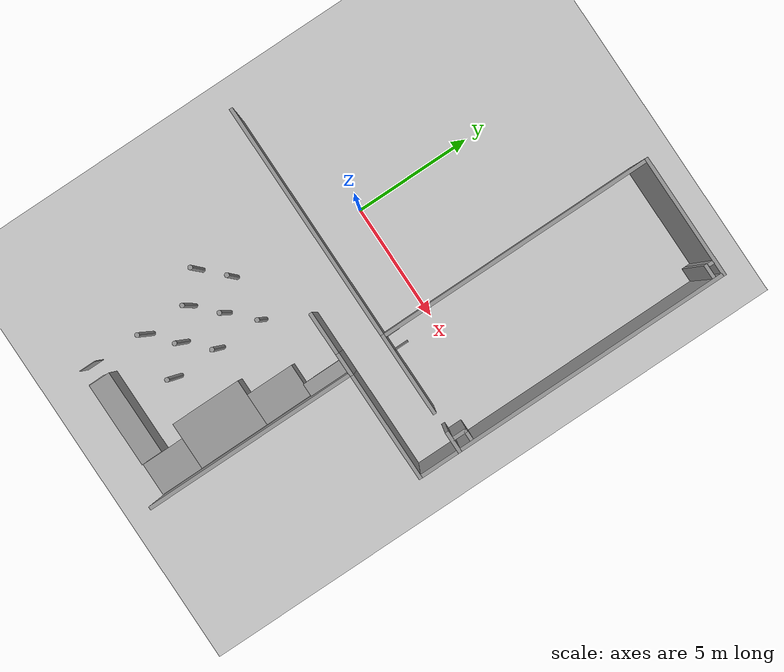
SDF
<sdf version="1.6">
 <world name="default">
  <model name="ground_plane">
   <static>1</static>
   <link name="link">
    <collision name="collision">
     <geometry><plane><normal>0 0 1</normal><size>100 100</size></plane></geometry>
     <surface>
      <contact><collide_bitmask>65535</collide_bitmask></contact>
      <friction><ode><mu>1</mu><mu2>1</mu2></ode></friction>
     </surface>
    </collision>
    <visual name="visual">
     <cast_shadows>0</cast_shadows>
     <geometry><plane><normal>0 0 1</normal><size>100 100</size></plane></geometry>
     <material>
      <script><uri>file://media/materials/scripts/gazebo.material</uri><name>Gazebo/Grey</name></script>
     </material>
    </visual>
   </link>
  </model>
  <model name="frame_503">
   <pose>7.129 3.88164 0 0 -0 0</pose>
   <link name="Wall_10">
    <collision name="Wall_10_Collision">
     <geometry><box><size>11.57 0.15 2.5</size></box></geometry>
     <pose>0 0 1.25 0 -0 0</pose>
    </collision>
    <visual name="Wall_10_Visual">
     <pose>0 0 1.25 0 -0 0</pose>
     <geometry><box><size>11.57 0.15 2.5</size></box></geometry>
     <material>
      <script><uri>file://media/materials/scripts/gazebo.material</uri><name>Gazebo/Grey</name></script>
      <ambient>1 1 1 1</ambient>
     </material>
     <meta><layer>0</layer></meta>
    </visual>
    <pose>2.5249 0.014025 0 0 -0 -1.5708</pose>
   </link>
   <link name="Wall_16">
    <collision name="Wall_16_Collision">
     <geometry><box><size>0.915 0.15 2.5</size></box></geometry>
     <pose>0 0 1.25 0 -0 0</pose>
    </collision>
    <visual name="Wall_16_Visual">
     <pose>0 0 1.25 0 -0 0</pose>
     <geometry><box><size>0.915 0.15 2.5</size></box></geometry>
     <material>
      <script><uri>file://media/materials/scripts/gazebo.material</uri><name>Gazebo/Grey</name></script>
      <ambient>1 1 1 1</ambient>
     </material>
     <meta><layer>0</layer></meta>
    </visual>
    <pose>2.1424 -5.84133 0 0 -0 0</pose>
   </link>
   <link name="Wall_18">
    <collision name="Wall_18_Collision">
     <geometry><box><size>0.61 0.15 2.5</size></box></geometry>
     <pose>0 0 1.25 0 -0 0</pose>
    </collision>
    <visual name="Wall_18_Visual">
     <pose>0 0 1.25 0 -0 0</pose>
     <geometry><box><size>0.61 0.15 2.5</size></box></geometry>
     <material>
      <script><uri>file://media/materials/scripts/gazebo.material</uri><name>Gazebo/Grey</name></script>
      <ambient>1 1 1 1</ambient>
     </material>
     <meta><layer>0</layer></meta>
    </visual>
    <pose>2.02787 -5.48355 0 0 -0 -1.5708</pose>
   </link>
   <link name="Wall_20">
    <collision name="Wall_20_Collision">
     <geometry><box><size>0.515 0.15 2.5</size></box></geometry>
     <pose>0 0 1.25 0 -0 0</pose>
    </collision>
    <visual name="Wall_20_Visual">
     <pose>0 0 1.25 0 -0 0</pose>
     <geometry><box><size>0.515 0.15 2.5</size></box></geometry>
     <material>
      <script><uri>file://media/materials/scripts/gazebo.material</uri><name>Gazebo/Grey</name></script>
      <ambient>1 1 1 1</ambient>
     </material>
     <meta><layer>0</layer></meta>
    </visual>
    <pose>2.21248 -5.24119 0 0 -0 0</pose>
   </link>
   <link name="Wall_22">
    <collision name="Wall_22_Collision">
     <geometry><box><size>3.5 0.15 2.5</size></box></geometry>
     <pose>0 0 1.25 0 -0 0</pose>
    </collision>
    <visual name="Wall_22_Visual">
     <pose>0 0 1.25 0 -0 0</pose>
     <geometry><box><size>3.5 0.15 2.5</size></box></geometry>
     <material>
      <script><uri>file://media/materials/scripts/gazebo.material</uri><name>Gazebo/Grey</name></script>
      <ambient>1 1 1 1</ambient>
     </material>
     <meta><layer>0</layer></meta>
    </visual>
    <pose>-0.849025 -5.83136 0 0 -0 0</pose>
   </link>
   <link name="Wall_27">
    <collision name="Wall_27_Collision">
     <geometry><box><size>0.23 0.15 2.5</size></box></geometry>
     <pose>0 0 1.25 0 -0 0</pose>
    </collision>
    <visual name="Wall_27_Visual">
     <pose>0 0 1.25 0 -0 0</pose>
     <geometry><box><size>0.23 0.15 2.5</size></box></geometry>
     <material>
      <script><uri>file://media/materials/scripts/gazebo.material</uri><name>Gazebo/Grey</name></script>
      <ambient>1 1 1 1</ambient>
     </material>
     <meta><layer>0</layer></meta>
    </visual>
    <pose>1.94245 5.66179 0 0 -0 -1.5708</pose>
   </link>
   <link name="Wall_29">
    <collision name="Wall_29_Collision">
     <geometry><box><size>0.59 0.15 2.5</size></box></geometry>
     <pose>0 0 1.25 0 -0 0</pose>
    </collision>
    <visual name="Wall_29_Visual">
     <pose>0 0 1.25 0 -0 0</pose>
     <geometry><box><size>0.59 0.15 2.5</size></box></geometry>
     <material>
      <script><uri>file://media/materials/scripts/gazebo.material</uri><name>Gazebo/Grey</name></script>
      <ambient>1 1 1 1</ambient>
     </material>
     <meta><layer>0</layer></meta>
    </visual>
    <pose>2.16053 5.47077 0 0 -0 0</pose>
   </link>
   <link name="Wall_33">
    <collision name="Wall_33_Collision">
     <geometry><box><size>0.57 0.04 1.3</size></box></geometry>
     <pose>0 0 0.65 0 -0 0</pose>
    </collision>
    <visual name="Wall_33_Visual">
     <pose>0 0 0.65 0 -0 0</pose>
     <geometry><box><size>0.57 0.04 1.3</size></box></geometry>
     <material>
      <script><uri>file://media/materials/scripts/gazebo.material</uri><name>Gazebo/Grey</name></script>
      <ambient>1 1 1 1</ambient>
     </material>
     <meta><layer>0</layer></meta>
    </visual>
    <pose>-2.42208 -5.46511 0 0 -0 -1.5708</pose>
   </link>
   <link name="Wall_35">
    <collision name="Wall_35_Collision">
     <geometry><box><size>0.57 0.04 1.3</size></box></geometry>
     <pose>0 0 0.65 0 -0 0</pose>
    </collision>
    <visual name="Wall_35_Visual">
     <pose>0 0 0.65 0 -0 0</pose>
     <geometry><box><size>0.57 0.04 1.3</size></box></geometry>
     <material>
      <script><uri>file://media/materials/scripts/gazebo.material</uri><name>Gazebo/Grey</name></script>
      <ambient>1 1 1 1</ambient>
     </material>
     <meta><layer>0</layer></meta>
    </visual>
    <pose>-1.81841 -5.4653 0 0 -0 -1.5708</pose>
   </link>
   <link name="Wall_6">
    <collision name="Wall_6_Collision">
     <geometry><box><size>5.2 0.15 2.5</size></box></geometry>
     <pose>0 0 1.25 0 -0 0</pose>
    </collision>
    <visual name="Wall_6_Visual">
     <pose>0 0 1.25 0 -0 0</pose>
     <geometry><box><size>5.2 0.15 2.5</size></box></geometry>
     <material>
      <script><uri>file://media/materials/scripts/gazebo.material</uri><name>Gazebo/Grey</name></script>
      <ambient>1 1 1 1</ambient>
     </material>
     <meta><layer>0</layer></meta>
    </visual>
    <pose>0 5.84133 0 0 -0 0</pose>
   </link>
   <link name="Wall_8">
    <collision name="Wall_8_Collision">
     <geometry><box><size>11.57 0.15 2.5</size></box></geometry>
     <pose>0 0 1.25 0 -0 0</pose>
    </collision>
    <visual name="Wall_8_Visual">
     <pose>0 0 1.25 0 -0 0</pose>
     <geometry><box><size>11.57 0.15 2.5</size></box></geometry>
     <material>
      <script><uri>file://media/materials/scripts/gazebo.material</uri><name>Gazebo/Grey</name></script>
      <ambient>1 1 1 1</ambient>
     </material>
     <meta><layer>0</layer></meta>
    </visual>
    <pose>-2.52426 0.021404 0 0 -0 -1.5708</pose>
   </link>
   <static>1</static>
  </model>
  <model name="aisle1">
   <pose>9.65276 -2.82844 0 0 -0 0</pose>
   <link name="Wall_2">
    <collision name="Wall_2_Collision">
     <geometry><box><size>1.6 0.15 2.5</size></box></geometry>
     <pose>0 0 1.25 0 -0 0</pose>
    </collision>
    <visual name="Wall_2_Visual">
     <pose>0 0 1.25 0 -0 0</pose>
     <geometry><box><size>1.6 0.15 2.5</size></box></geometry>
     <material>
      <script><uri>file://media/materials/scripts/gazebo.material</uri><name>Gazebo/Grey</name></script>
      <ambient>1 1 1 1</ambient>
     </material>
     <meta><layer>0</layer></meta>
    </visual>
    <pose>0 -0 0 0 -0 -1.5708</pose>
   </link>
   <static>1</static>
  </model>
  <model name="a2">
   <pose>7.44595 -3.70134 0 0 -0 0</pose>
   <link name="Wall_7">
    <collision name="Wall_7_Collision">
     <geometry><box><size>4.56 0.15 2.5</size></box></geometry>
     <pose>0 0 1.25 0 -0 0</pose>
    </collision>
    <visual name="Wall_7_Visual">
     <pose>0 0 1.25 0 -0 0</pose>
     <geometry><box><size>4.56 0.15 2.5</size></box></geometry>
     <material>
      <script><uri>file://media/materials/scripts/gazebo.material</uri><name>Gazebo/Grey</name></script>
      <ambient>1 1 1 1</ambient>
     </material>
     <meta><layer>0</layer></meta>
    </visual>
   </link>
   <static>1</static>
  </model>
  <model name="a3">
   <pose>5.08575 -8.18004 0 0 -0 0</pose>
   <link name="Wall_10">
    <collision name="Wall_10_Collision">
     <geometry><box><size>8.82 0.15 2.5</size></box></geometry>
     <pose>0 0 1.25 0 -0 0</pose>
    </collision>
    <visual name="Wall_10_Visual">
     <pose>0 0 1.25 0 -0 0</pose>
     <geometry><box><size>8.82 0.15 2.5</size></box></geometry>
     <material>
      <script><uri>file://media/materials/scripts/gazebo.material</uri><name>Gazebo/Grey</name></script>
      <ambient>1 1 1 1</ambient>
     </material>
     <meta><layer>0</layer></meta>
    </visual>
    <pose>0 -0 0 0 -0 -1.5708</pose>
   </link>
   <static>1</static>
  </model>
  <model name="a5">
   <pose>4.68026 -3.70193 0 0 -0 0</pose>
   <link name="Wall_16">
    <collision name="Wall_16_Collision">
     <geometry><box><size>0.97 0.15 2.5</size></box></geometry>
     <pose>0 0 1.25 0 -0 0</pose>
    </collision>
    <visual name="Wall_16_Visual">
     <pose>0 0 1.25 0 -0 0</pose>
     <geometry><box><size>0.97 0.15 2.5</size></box></geometry>
     <material>
      <script><uri>file://media/materials/scripts/gazebo.material</uri><name>Gazebo/Grey</name></script>
      <ambient>1 1 1 1</ambient>
     </material>
     <meta><layer>0</layer></meta>
    </visual>
   </link>
   <static>1</static>
  </model>
  <model name="a7_0">
   <pose>-0.468482 -1.9505 0 0 -0 0</pose>
   <link name="Wall_44">
    <collision name="Wall_44_Collision">
     <geometry><box><size>10 0.15 2.5</size></box></geometry>
     <pose>0 0 1.25 0 -0 0</pose>
    </collision>
    <visual name="Wall_44_Visual">
     <pose>0 0 1.25 0 -0 0</pose>
     <geometry><box><size>10 0.15 2.5</size></box></geometry>
     <material>
      <script><uri>file://media/materials/scripts/gazebo.material</uri><name>Gazebo/Grey</name></script>
      <ambient>1 1 1 1</ambient>
     </material>
     <meta><layer>0</layer></meta>
    </visual>
   </link>
   <static>1</static>
  </model>
  <model name="step1">
   <static>1</static>
   <link name="link">
    <inertial>
     <mass>10</mass>
     <inertia>
      <ixx>0.166667</ixx>
      <ixy>0</ixy>
      <ixz>0</ixz>
      <iyy>0.166667</iyy>
      <iyz>0</iyz>
      <izz>0.166667</izz>
     </inertia>
    </inertial>
    <visual name="visual">
     <geometry><box><size>1.38 1.80435 1</size></box></geometry>
     <material>
      <script><name>Gazebo/Grey</name><uri>file://media/materials/scripts/gazebo.material</uri></script>
      <shader type="vertex"><normal_map>__default__</normal_map></shader>
      <ambient>0.3 0.3 0.3 1</ambient>
      <diffuse>0.7 0.7 0.7 1</diffuse>
      <specular>0.01 0.01 0.01 1</specular>
      <emissive>0 0 0 1</emissive>
     </material>
    </visual>
    <collision name="collision">
     <geometry><box><size>1.38 1.80435 1</size></box></geometry>
     <surface>
      <friction>
       <ode><mu>1</mu><mu2>1</mu2><fdir1>0 0 0</fdir1><slip1>0</slip1><slip2>0</slip2></ode>
       <torsional>
        <coefficient>1</coefficient>
        <patch_radius>0</patch_radius>
        <surface_radius>0</surface_radius>
        <use_patch_radius>1</use_patch_radius>
        <ode><slip>0</slip></ode>
       </torsional>
      </friction>
      <bounce><restitution_coefficient>0</restitution_coefficient><threshold>1e+06</threshold></bounce>
      <contact>
       <collide_without_contact>0</collide_without_contact>
       <collide_without_contact_bitmask>1</collide_without_contact_bitmask>
       <collide_bitmask>1</collide_bitmask>
       <ode>
        <soft_cfm>0</soft_cfm>
        <soft_erp>0.2</soft_erp>
        <kp>1e+13</kp>
        <kd>1</kd>
        <max_vel>0.01</max_vel>
        <min_depth>0</min_depth>
       </ode>
       <bullet>
        <split_impulse>1</split_impulse>
        <split_impulse_penetration_threshold>-0.01</split_impulse_penetration_threshold>
        <soft_cfm>0</soft_cfm>
        <soft_erp>0.2</soft_erp>
        <kp>1e+13</kp>
        <kd>1</kd>
       </bullet>
      </contact>
     </surface>
    </collision>
   </link>
   <pose>4.28124 -11.4927 0.499995 1e-05 -0 0</pose>
  </model>
  <model name="step3">
   <static>1</static>
   <link name="link">
    <inertial>
     <mass>10</mass>
     <inertia>
      <ixx>0.166667</ixx>
      <ixy>0</ixy>
      <ixz>0</ixz>
      <iyy>0.166667</iyy>
      <iyz>0</iyz>
      <izz>0.166667</izz>
     </inertia>
    </inertial>
    <visual name="visual">
     <geometry><box><size>2.03 3.01 1</size></box></geometry>
     <material>
      <script><name>Gazebo/Grey</name><uri>file://media/materials/scripts/gazebo.material</uri></script>
      <shader type="vertex"><normal_map>__default__</normal_map></shader>
      <ambient>0.3 0.3 0.3 1</ambient>
      <diffuse>0.7 0.7 0.7 1</diffuse>
      <specular>0.01 0.01 0.01 1</specular>
      <emissive>0 0 0 1</emissive>
     </material>
    </visual>
    <collision name="collision">
     <geometry><box><size>2.03 3.01 1</size></box></geometry>
     <surface>
      <friction>
       <ode><mu>1</mu><mu2>1</mu2><fdir1>0 0 0</fdir1><slip1>0</slip1><slip2>0</slip2></ode>
       <torsional>
        <coefficient>1</coefficient>
        <patch_radius>0</patch_radius>
        <surface_radius>0</surface_radius>
        <use_patch_radius>1</use_patch_radius>
        <ode><slip>0</slip></ode>
       </torsional>
      </friction>
      <bounce><restitution_coefficient>0</restitution_coefficient><threshold>1e+06</threshold></bounce>
      <contact>
       <collide_without_contact>0</collide_without_contact>
       <collide_without_contact_bitmask>1</collide_without_contact_bitmask>
       <collide_bitmask>1</collide_bitmask>
       <ode>
        <soft_cfm>0</soft_cfm>
        <soft_erp>0.2</soft_erp>
        <kp>1e+13</kp>
        <kd>1</kd>
        <max_vel>0.01</max_vel>
        <min_depth>0</min_depth>
       </ode>
       <bullet>
        <split_impulse>1</split_impulse>
        <split_impulse_penetration_threshold>-0.01</split_impulse_penetration_threshold>
        <soft_cfm>0</soft_cfm>
        <soft_erp>0.2</soft_erp>
        <kp>1e+13</kp>
        <kd>1</kd>
       </bullet>
      </contact>
     </surface>
    </collision>
   </link>
   <pose>3.95023 -9.08446 0.499995 1e-05 -0 0</pose>
  </model>
  <model name="funi3">
   <static>1</static>
   <link name="link">
    <inertial>
     <mass>10</mass>
     <inertia>
      <ixx>0.166667</ixx>
      <ixy>0</ixy>
      <ixz>0</ixz>
      <iyy>0.166667</iyy>
      <iyz>0</iyz>
      <izz>0.166667</izz>
     </inertia>
    </inertial>
    <pose>-1.31903 0.055597 0 0 -0 0</pose>
    <visual name="visual">
     <geometry><box><size>3.65 0.910525 1</size></box></geometry>
     <material>
      <script><name>Gazebo/Grey</name><uri>file://media/materials/scripts/gazebo.material</uri></script>
      <shader type="vertex"><normal_map>__default__</normal_map></shader>
      <ambient>0.3 0.3 0.3 1</ambient>
      <diffuse>0.7 0.7 0.7 1</diffuse>
      <specular>0.01 0.01 0.01 1</specular>
      <emissive>0 0 0 1</emissive>
     </material>
    </visual>
    <collision name="collision">
     <geometry><box><size>3.65 0.910525 1</size></box></geometry>
     <surface>
      <friction>
       <ode><mu>1</mu><mu2>1</mu2><fdir1>0 0 0</fdir1><slip1>0</slip1><slip2>0</slip2></ode>
       <torsional>
        <coefficient>1</coefficient>
        <patch_radius>0</patch_radius>
        <surface_radius>0</surface_radius>
        <use_patch_radius>1</use_patch_radius>
        <ode><slip>0</slip></ode>
       </torsional>
      </friction>
      <bounce><restitution_coefficient>0</restitution_coefficient><threshold>1e+06</threshold></bounce>
      <contact>
       <collide_without_contact>0</collide_without_contact>
       <collide_without_contact_bitmask>1</collide_without_contact_bitmask>
       <collide_bitmask>1</collide_bitmask>
       <ode>
        <soft_cfm>0</soft_cfm>
        <soft_erp>0.2</soft_erp>
        <kp>1e+13</kp>
        <kd>1</kd>
        <max_vel>0.01</max_vel>
        <min_depth>0</min_depth>
       </ode>
       <bullet>
        <split_impulse>1</split_impulse>
        <split_impulse_penetration_threshold>-0.01</split_impulse_penetration_threshold>
        <soft_cfm>0</soft_cfm>
        <soft_erp>0.2</soft_erp>
        <kp>1e+13</kp>
        <kd>1</kd>
       </bullet>
      </contact>
     </surface>
    </collision>
   </link>
   <pose>3.07038 -12.0343 0.499982 -0 1e-05 -8.9e-05</pose>
  </model>
  <model name="step2">
   <static>1</static>
   <link name="link">
    <inertial>
     <mass>10</mass>
     <inertia>
      <ixx>0.166667</ixx>
      <ixy>0</ixy>
      <ixz>0</ixz>
      <iyy>0.166667</iyy>
      <iyz>0</iyz>
      <izz>0.166667</izz>
     </inertia>
    </inertial>
    <visual name="visual">
     <geometry><box><size>1.38 2.05001 1</size></box></geometry>
     <material>
      <script><name>Gazebo/Grey</name><uri>file://media/materials/scripts/gazebo.material</uri></script>
      <shader type="vertex"><normal_map>__default__</normal_map></shader>
      <ambient>0.3 0.3 0.3 1</ambient>
      <diffuse>0.7 0.7 0.7 1</diffuse>
      <specular>0.01 0.01 0.01 1</specular>
      <emissive>0 0 0 1</emissive>
     </material>
    </visual>
    <collision name="collision">
     <geometry><box><size>1.38 2.05001 1</size></box></geometry>
     <surface>
      <friction>
       <ode><mu>1</mu><mu2>1</mu2><fdir1>0 0 0</fdir1><slip1>0</slip1><slip2>0</slip2></ode>
       <torsional>
        <coefficient>1</coefficient>
        <patch_radius>0</patch_radius>
        <surface_radius>0</surface_radius>
        <use_patch_radius>1</use_patch_radius>
        <ode><slip>0</slip></ode>
       </torsional>
      </friction>
      <bounce><restitution_coefficient>0</restitution_coefficient><threshold>1e+06</threshold></bounce>
      <contact>
       <collide_without_contact>0</collide_without_contact>
       <collide_without_contact_bitmask>1</collide_without_contact_bitmask>
       <collide_bitmask>1</collide_bitmask>
       <ode>
        <soft_cfm>0</soft_cfm>
        <soft_erp>0.2</soft_erp>
        <kp>1e+13</kp>
        <kd>1</kd>
        <max_vel>0.01</max_vel>
        <min_depth>0</min_depth>
       </ode>
       <bullet>
        <split_impulse>1</split_impulse>
        <split_impulse_penetration_threshold>-0.01</split_impulse_penetration_threshold>
        <soft_cfm>0</soft_cfm>
        <soft_erp>0.2</soft_erp>
        <kp>1e+13</kp>
        <kd>1</kd>
       </bullet>
      </contact>
     </surface>
    </collision>
   </link>
   <pose>4.27379 -6.55381 0.499995 -1e-05 0 0</pose>
  </model>
  <model name="deskframe">
   <static>1</static>
   <link name="Wall_34">
    <pose>-0.325 0 0 0 0 -1.5708</pose>
    <inertial>
     <mass>10</mass>
     <inertia><ixx>1</ixx><ixy>0</ixy><ixz>0</ixz><iyy>1</iyy><iyz>0</iyz><izz>1</izz></inertia>
    </inertial>
    <visual name="Wall_34_Visual">
     <pose>0 0 1.25 0 -0 0</pose>
     <geometry><box><size>0.7 0.03 1</size></box></geometry>
     <material>
      <script><uri>file://media/materials/scripts/gazebo.material</uri><name>Gazebo/Grey</name></script>
      <ambient>1 1 1 1</ambient>
      <shader type="vertex"><normal_map>__default__</normal_map></shader>
      <diffuse>0.7 0.7 0.7 1</diffuse>
      <specular>0.01 0.01 0.01 1</specular>
      <emissive>0 0 0 1</emissive>
     </material>
     <meta><layer>0</layer></meta>
    </visual>
    <collision name="Wall_34_Collision">
     <pose>0 0 1.25 0 -0 0</pose>
     <geometry><box><size>0.7 0.15 2.5</size></box></geometry>
     <surface>
      <friction>
       <ode><mu>1</mu><mu2>1</mu2><fdir1>0 0 0</fdir1><slip1>0</slip1><slip2>0</slip2></ode>
       <torsional>
        <coefficient>1</coefficient>
        <patch_radius>0</patch_radius>
        <surface_radius>0</surface_radius>
        <use_patch_radius>1</use_patch_radius>
        <ode><slip>0</slip></ode>
       </torsional>
      </friction>
      <bounce><restitution_coefficient>0</restitution_coefficient><threshold>1e+06</threshold></bounce>
      <contact>
       <collide_without_contact>0</collide_without_contact>
       <collide_without_contact_bitmask>1</collide_without_contact_bitmask>
       <collide_bitmask>1</collide_bitmask>
       <ode>
        <soft_cfm>0</soft_cfm>
        <soft_erp>0.2</soft_erp>
        <kp>1e+13</kp>
        <kd>1</kd>
        <max_vel>0.01</max_vel>
        <min_depth>0</min_depth>
       </ode>
       <bullet>
        <split_impulse>1</split_impulse>
        <split_impulse_penetration_threshold>-0.01</split_impulse_penetration_threshold>
        <soft_cfm>0</soft_cfm>
        <soft_erp>0.2</soft_erp>
        <kp>1e+13</kp>
        <kd>1</kd>
       </bullet>
      </contact>
     </surface>
    </collision>
   </link>
   <link name="Wall_38">
    <pose>0.325 0 0 0 0 -1.5708</pose>
    <inertial>
     <mass>0.400397</mass>
     <inertia>
      <ixx>0.20866</ixx>
      <ixy>0</ixy>
      <ixz>0</ixz>
      <iyy>0.22489</iyy>
      <iyz>0</iyz>
      <izz>0.0164699</izz>
     </inertia>
    </inertial>
    <visual name="Wall_38_Visual">
     <pose>0 0 1.25 0 -0 0</pose>
     <geometry><box><size>0.7 0.030001 1</size></box></geometry>
     <material>
      <script><uri>file://media/materials/scripts/gazebo.material</uri><name>Gazebo/Grey</name></script>
      <ambient>1 1 1 1</ambient>
      <shader type="vertex"><normal_map>__default__</normal_map></shader>
      <diffuse>0.7 0.7 0.7 1</diffuse>
      <specular>0.01 0.01 0.01 1</specular>
      <emissive>0 0 0 1</emissive>
     </material>
     <meta><layer>0</layer></meta>
    </visual>
    <collision name="Wall_38_Collision">
     <pose>0 0 1.25 0 -0 0</pose>
     <geometry><box><size>0.7 0.060061 2.5</size></box></geometry>
     <surface>
      <friction>
       <ode><mu>1</mu><mu2>1</mu2><fdir1>0 0 0</fdir1><slip1>0</slip1><slip2>0</slip2></ode>
       <torsional>
        <coefficient>1</coefficient>
        <patch_radius>0</patch_radius>
        <surface_radius>0</surface_radius>
        <use_patch_radius>1</use_patch_radius>
        <ode><slip>0</slip></ode>
       </torsional>
      </friction>
      <bounce><restitution_coefficient>0</restitution_coefficient><threshold>1e+06</threshold></bounce>
      <contact>
       <collide_without_contact>0</collide_without_contact>
       <collide_without_contact_bitmask>1</collide_without_contact_bitmask>
       <collide_bitmask>1</collide_bitmask>
       <ode>
        <soft_cfm>0</soft_cfm>
        <soft_erp>0.2</soft_erp>
        <kp>1e+13</kp>
        <kd>1</kd>
        <max_vel>0.01</max_vel>
        <min_depth>0</min_depth>
       </ode>
       <bullet>
        <split_impulse>1</split_impulse>
        <split_impulse_penetration_threshold>-0.01</split_impulse_penetration_threshold>
        <soft_cfm>0</soft_cfm>
        <soft_erp>0.2</soft_erp>
        <kp>1e+13</kp>
        <kd>1</kd>
       </bullet>
      </contact>
     </surface>
    </collision>
   </link>
   <pose>-0.415536 -12.0779 -0.765953 0 -0 0</pose>
  </model>
  <model name="frontdesk">
   <static>1</static>
   <link name="link">
    <inertial>
     <mass>1</mass>
     <inertia>
      <ixx>0.166667</ixx>
      <ixy>0</ixy>
      <ixz>0</ixz>
      <iyy>0.166667</iyy>
      <iyz>0</iyz>
      <izz>0.166667</izz>
     </inertia>
    </inertial>
    <visual name="visual">
     <geometry><box><size>0.55 1.74 1</size></box></geometry>
     <material>
      <script><name>Gazebo/Grey</name><uri>file://media/materials/scripts/gazebo.material</uri></script>
      <shader type="vertex"><normal_map>__default__</normal_map></shader>
      <ambient>0.3 0.3 0.3 1</ambient>
      <diffuse>0.7 0.7 0.7 1</diffuse>
      <specular>0.01 0.01 0.01 1</specular>
      <emissive>0 0 0 1</emissive>
     </material>
    </visual>
    <collision name="collision">
     <geometry><box><size>0.55 1.74 1</size></box></geometry>
     <surface>
      <friction>
       <ode><mu>1</mu><mu2>1</mu2><fdir1>0 0 0</fdir1><slip1>0</slip1><slip2>0</slip2></ode>
       <torsional>
        <coefficient>1</coefficient>
        <patch_radius>0</patch_radius>
        <surface_radius>0</surface_radius>
        <use_patch_radius>1</use_patch_radius>
        <ode><slip>0</slip></ode>
       </torsional>
      </friction>
      <bounce><restitution_coefficient>0</restitution_coefficient><threshold>1e+06</threshold></bounce>
      <contact>
       <collide_without_contact>0</collide_without_contact>
       <collide_without_contact_bitmask>1</collide_without_contact_bitmask>
       <collide_bitmask>1</collide_bitmask>
       <ode>
        <soft_cfm>0</soft_cfm>
        <soft_erp>0.2</soft_erp>
        <kp>1e+13</kp>
        <kd>1</kd>
        <max_vel>0.01</max_vel>
        <min_depth>0</min_depth>
       </ode>
       <bullet>
        <split_impulse>1</split_impulse>
        <split_impulse_penetration_threshold>-0.01</split_impulse_penetration_threshold>
        <soft_cfm>0</soft_cfm>
        <soft_erp>0.2</soft_erp>
        <kp>1e+13</kp>
        <kd>1</kd>
       </bullet>
      </contact>
     </surface>
    </collision>
   </link>
   <pose>4.72538 -4.70294 0.5 0 -0 0</pose>
  </model>
  <model name="door">
   <link name="Wall_0">
    <pose>-0.099762 0 0 0 -0 0</pose>
    <inertial>
     <mass>1</mass>
     <inertia><ixx>1</ixx><ixy>0</ixy><ixz>0</ixz><iyy>1</iyy><iyz>0</iyz><izz>1</izz></inertia>
    </inertial>
    <visual name="Wall_0_Visual">
     <pose>0 0 1.25 0 -0 0</pose>
     <geometry><box><size>1.8 0.15 2.5</size></box></geometry>
     <material>
      <script><uri>file://media/materials/scripts/gazebo.material</uri><name>Gazebo/Grey</name></script>
      <ambient>1 1 1 1</ambient>
      <shader type="vertex"><normal_map>__default__</normal_map></shader>
      <diffuse>0.7 0.7 0.7 1</diffuse>
      <specular>0.01 0.01 0.01 1</specular>
      <emissive>0 0 0 1</emissive>
     </material>
     <meta><layer>0</layer></meta>
    </visual>
    <collision name="Wall_0_Collision">
     <pose>0 0 1.25 0 -0 0</pose>
     <geometry><box><size>1.6 0.15 2.5</size></box></geometry>
     <surface>
      <friction>
       <ode><mu>1</mu><mu2>1</mu2><fdir1>0 0 0</fdir1><slip1>0</slip1><slip2>0</slip2></ode>
       <torsional>
        <coefficient>1</coefficient>
        <patch_radius>0</patch_radius>
        <surface_radius>0</surface_radius>
        <use_patch_radius>1</use_patch_radius>
        <ode><slip>0</slip></ode>
       </torsional>
      </friction>
      <bounce><restitution_coefficient>0</restitution_coefficient><threshold>1e+06</threshold></bounce>
      <contact>
       <collide_without_contact>0</collide_without_contact>
       <collide_without_contact_bitmask>1</collide_without_contact_bitmask>
       <collide_bitmask>1</collide_bitmask>
       <ode>
        <soft_cfm>0</soft_cfm>
        <soft_erp>0.2</soft_erp>
        <kp>1e+13</kp>
        <kd>1</kd>
        <max_vel>0.01</max_vel>
        <min_depth>0</min_depth>
       </ode>
       <bullet>
        <split_impulse>1</split_impulse>
        <split_impulse_penetration_threshold>-0.01</split_impulse_penetration_threshold>
        <soft_cfm>0</soft_cfm>
        <soft_erp>0.2</soft_erp>
        <kp>1e+13</kp>
        <kd>1</kd>
       </bullet>
      </contact>
     </surface>
    </collision>
   </link>
   <static>1</static>
   <pose>3.39471 -3.70542 0 0 -0 0</pose>
  </model>
  <model name="unit_cylinder">
   <pose>1.50327 -5.49934 1.10608 0 0 -0.004222</pose>
   <static>1</static>
   <link name="link">
    <inertial>
     <mass>1</mass>
     <inertia><ixx>0.145833</ixx><ixy>0</ixy><ixz>0</ixz><iyy>0.145833</iyy><iyz>0</iyz><izz>0.125</izz></inertia>
    </inertial>
    <collision name="collision">
     <geometry><cylinder><radius>0.0945559</radius><length>2.21218</length></cylinder></geometry>
    </collision>
    <visual name="visual">
     <geometry><cylinder><radius>0.0945559</radius><length>2.21218</length></cylinder></geometry>
     <material>
      <script><name>Gazebo/Grey</name><uri>file://media/materials/scripts/gazebo.material</uri></script>
     </material>
    </visual>
   </link>
  </model>
  <model name="unit_cylinder_clone">
   <pose>1.4876 -7.50057 1.11633 0 0 -0.005161</pose>
   <static>1</static>
   <link name="link">
    <inertial>
     <mass>1</mass>
     <inertia><ixx>0.145833</ixx><ixy>0</ixy><ixz>0</ixz><iyy>0.145833</iyy><iyz>0</iyz><izz>0.125</izz></inertia>
    </inertial>
    <collision name="collision">
     <geometry><cylinder><radius>0.0945558</radius><length>2.23266</length></cylinder></geometry>
    </collision>
    <visual name="visual">
     <geometry><cylinder><radius>0.0945558</radius><length>2.23266</length></cylinder></geometry>
     <material>
      <script><name>Gazebo/Grey</name><uri>file://media/materials/scripts/gazebo.material</uri></script>
     </material>
    </visual>
   </link>
  </model>
  <model name="unit_cylinder_clone_clone">
   <pose>1.49284 -9.50631 1.11633 0 1e-06 -0.003867</pose>
   <static>1</static>
   <link name="link">
    <inertial>
     <mass>1</mass>
     <inertia><ixx>0.145833</ixx><ixy>0</ixy><ixz>0</ixz><iyy>0.145833</iyy><iyz>0</iyz><izz>0.125</izz></inertia>
    </inertial>
    <collision name="collision">
     <geometry><cylinder><radius>0.0945558</radius><length>2.23266</length></cylinder></geometry>
    </collision>
    <visual name="visual">
     <geometry><cylinder><radius>0.0945558</radius><length>2.23266</length></cylinder></geometry>
     <material>
      <script><name>Gazebo/Grey</name><uri>file://media/materials/scripts/gazebo.material</uri></script>
     </material>
    </visual>
   </link>
  </model>
  <model name="unit_cylinder_clone_0">
   <pose>0.506043 -6.51544 1.10608 0 0 -0.002854</pose>
   <static>1</static>
   <link name="link">
    <inertial>
     <mass>1</mass>
     <inertia><ixx>0.145833</ixx><ixy>0</ixy><ixz>0</ixz><iyy>0.145833</iyy><iyz>0</iyz><izz>0.125</izz></inertia>
    </inertial>
    <collision name="collision">
     <geometry><cylinder><radius>0.0945558</radius><length>2.21218</length></cylinder></geometry>
    </collision>
    <visual name="visual">
     <geometry><cylinder><radius>0.0945558</radius><length>2.21218</length></cylinder></geometry>
     <material>
      <script><name>Gazebo/Grey</name><uri>file://media/materials/scripts/gazebo.material</uri></script>
     </material>
    </visual>
   </link>
  </model>
  <model name="unit_cylinder_clone_0_clone">
   <pose>0.522741 -8.52328 1.10608 0 0 -0.003586</pose>
   <static>1</static>
   <link name="link">
    <inertial>
     <mass>1</mass>
     <inertia><ixx>0.145833</ixx><ixy>0</ixy><ixz>0</ixz><iyy>0.145833</iyy><iyz>0</iyz><izz>0.125</izz></inertia>
    </inertial>
    <collision name="collision">
     <geometry><cylinder><radius>0.0945558</radius><length>2.21218</length></cylinder></geometry>
    </collision>
    <visual name="visual">
     <geometry><cylinder><radius>0.0945558</radius><length>2.21218</length></cylinder></geometry>
     <material>
      <script><name>Gazebo/Grey</name><uri>file://media/materials/scripts/gazebo.material</uri></script>
     </material>
    </visual>
   </link>
  </model>
  <model name="unit_cylinder_clone_0_clone_0">
   <pose>-1.49093 -6.47733 1.10608 0 0 -0.003238</pose>
   <static>1</static>
   <link name="link">
    <inertial>
     <mass>1</mass>
     <inertia><ixx>0.145833</ixx><ixy>0</ixy><ixz>0</ixz><iyy>0.145833</iyy><iyz>0</iyz><izz>0.125</izz></inertia>
    </inertial>
    <collision name="collision">
     <geometry><cylinder><radius>0.0945558</radius><length>2.21218</length></cylinder></geometry>
    </collision>
    <visual name="visual">
     <geometry><cylinder><radius>0.0945558</radius><length>2.21218</length></cylinder></geometry>
     <material>
      <script><name>Gazebo/Grey</name><uri>file://media/materials/scripts/gazebo.material</uri></script>
     </material>
    </visual>
   </link>
  </model>
  <model name="unit_cylinder_clone_1">
   <pose>-0.501255 -5.50871 1.10608 -0 1e-06 -0.003172</pose>
   <static>1</static>
   <link name="link">
    <inertial>
     <mass>1</mass>
     <inertia><ixx>0.145833</ixx><ixy>0</ixy><ixz>0</ixz><iyy>0.145833</iyy><iyz>0</iyz><izz>0.125</izz></inertia>
    </inertial>
    <collision name="collision">
     <geometry><cylinder><radius>0.0945558</radius><length>2.21218</length></cylinder></geometry>
    </collision>
    <visual name="visual">
     <geometry><cylinder><radius>0.0945558</radius><length>2.21218</length></cylinder></geometry>
     <material>
      <script><name>Gazebo/Grey</name><uri>file://media/materials/scripts/gazebo.material</uri></script>
     </material>
    </visual>
   </link>
  </model>
  <model name="unit_cylinder_clone_clone_0">
   <pose>-0.487767 -7.50856 1.11633 0 0 -0.00437</pose>
   <static>1</static>
   <link name="link">
    <inertial>
     <mass>1</mass>
     <inertia><ixx>0.145833</ixx><ixy>0</ixy><ixz>0</ixz><iyy>0.145833</iyy><iyz>0</iyz><izz>0.125</izz></inertia>
    </inertial>
    <collision name="collision">
     <geometry><cylinder><radius>0.0945558</radius><length>2.23266</length></cylinder></geometry>
    </collision>
    <visual name="visual">
     <geometry><cylinder><radius>0.0945558</radius><length>2.23266</length></cylinder></geometry>
     <material>
      <script><name>Gazebo/Grey</name><uri>file://media/materials/scripts/gazebo.material</uri></script>
     </material>
    </visual>
   </link>
  </model>
  <model name="unit_cylinder_clone_clone_clone">
   <pose>-0.503388 -9.49943 1.11633 0 0 -0.003853</pose>
   <static>1</static>
   <link name="link">
    <inertial>
     <mass>1</mass>
     <inertia><ixx>0.145833</ixx><ixy>0</ixy><ixz>0</ixz><iyy>0.145833</iyy><iyz>0</iyz><izz>0.125</izz></inertia>
    </inertial>
    <collision name="collision">
     <geometry><cylinder><radius>0.0945558</radius><length>2.23266</length></cylinder></geometry>
    </collision>
    <visual name="visual">
     <geometry><cylinder><radius>0.0945558</radius><length>2.23266</length></cylinder></geometry>
     <material>
      <script><name>Gazebo/Grey</name><uri>file://media/materials/scripts/gazebo.material</uri></script>
     </material>
    </visual>
   </link>
  </model>
 </world>
</sdf>
